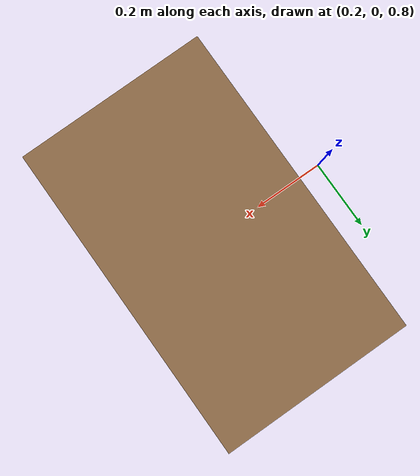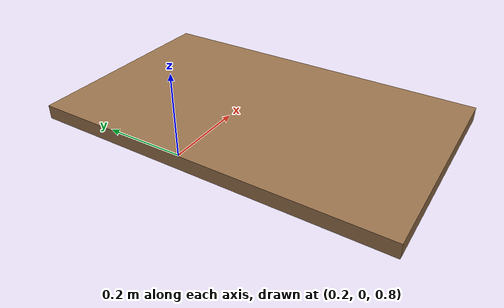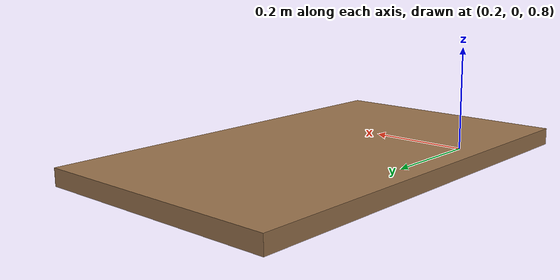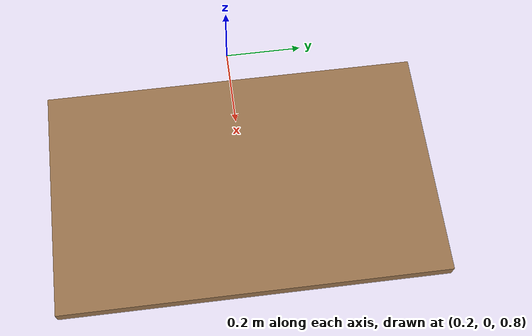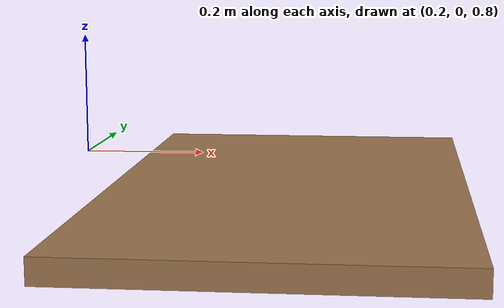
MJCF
<!-- Box-primitive table (VAMP-convertible alternative to table.xml): top at z=0.75 m,
     front edge 0.25 m ahead of the pelvis, 1.0 m wide.  Collision: contype=1 conaffinity=1 group=3. -->
<mujoco model="table_component">
  <worldbody>
    <body name="table" pos="0.55 0 0">
      <geom name="table_top_visual" type="box" size="0.3 0.5 0.02" pos="0 0 0.73"
            rgba="0.6 0.45 0.3 1" contype="0" conaffinity="0" group="0"/>
      <geom name="table_top" type="box" size="0.3 0.5 0.02" pos="0 0 0.73"
            contype="1" conaffinity="1" group="3"/>
      <geom name="table_leg_fl" type="box" size="0.02 0.02 0.355" pos="0.26 0.46 0.355"
            rgba="0.5 0.4 0.3 1" contype="1" conaffinity="1" group="3"/>
      <geom name="table_leg_fr" type="box" size="0.02 0.02 0.355" pos="0.26 -0.46 0.355"
            rgba="0.5 0.4 0.3 1" contype="1" conaffinity="1" group="3"/>
      <geom name="table_leg_bl" type="box" size="0.02 0.02 0.355" pos="-0.26 0.46 0.355"
            rgba="0.5 0.4 0.3 1" contype="1" conaffinity="1" group="3"/>
      <geom name="table_leg_br" type="box" size="0.02 0.02 0.355" pos="-0.26 -0.46 0.355"
            rgba="0.5 0.4 0.3 1" contype="1" conaffinity="1" group="3"/>
    </body>
  </worldbody>
</mujoco>
